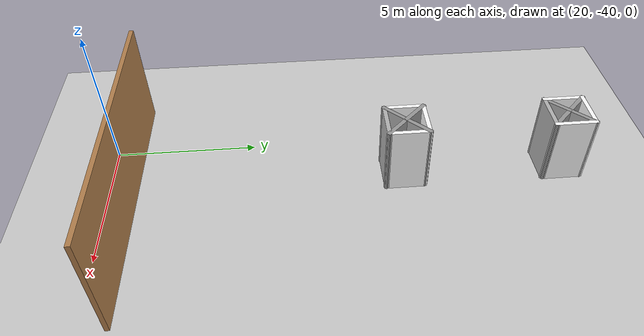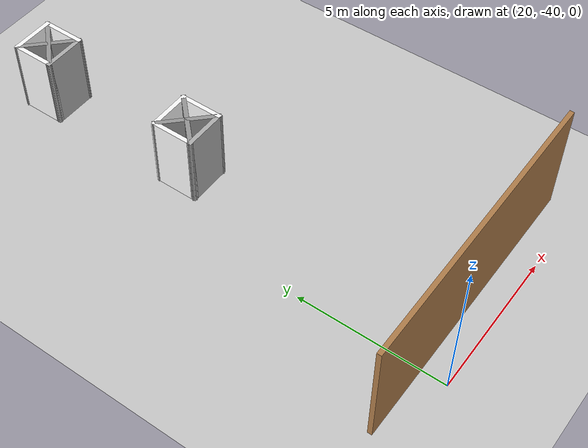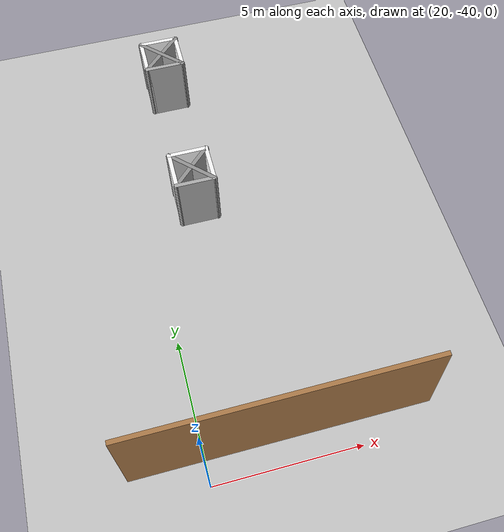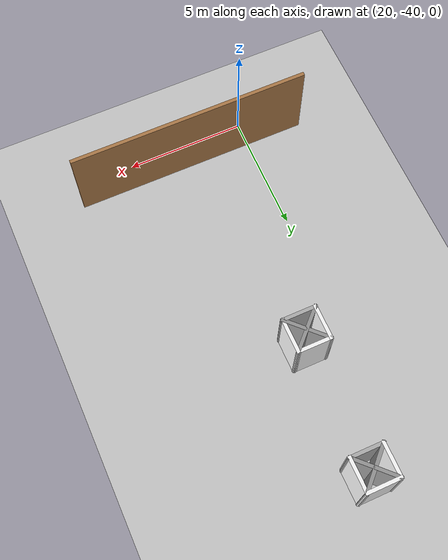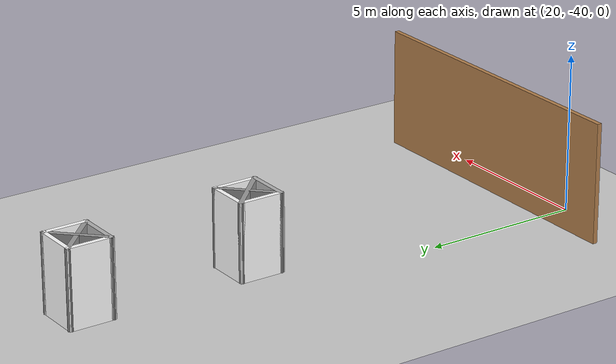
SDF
<sdf version="1.7">
 <world name="default">
  <model name="ground_plane">
   <static>1</static>
   <link name="link">
    <collision name="collision">
     <geometry><plane><normal>0 0 1</normal><size>100 100</size></plane></geometry>
     <surface>
      <contact><collide_bitmask>65535</collide_bitmask></contact>
      <friction><ode><mu>100</mu><mu2>50</mu2></ode></friction>
     </surface>
    </collision>
    <visual name="visual">
     <cast_shadows>0</cast_shadows>
     <geometry><plane><normal>0 0 1</normal><size>100 100</size></plane></geometry>
     <material>
      <script><uri>file://media/materials/scripts/gazebo.material</uri><name>Gazebo/Grey</name></script>
     </material>
    </visual>
   </link>
  </model>
  <model name="Untitled_clone_clone_1_clone_1_clone_1_clone">
   <link name="Wall_0">
    <pose>-0.8775 -4.2975 0 0 -0 0</pose>
    <inertial>
     <mass>1</mass>
     <inertia><ixx>1</ixx><ixy>0</ixy><ixz>0</ixz><iyy>1</iyy><iyz>0</iyz><izz>1</izz></inertia>
    </inertial>
    <visual name="Wall_0_Visual">
     <pose>0 0 1.9 0 -0 0</pose>
     <geometry><box><size>10 0.15 3.8</size></box></geometry>
     <material>
      <script><uri>file://media/materials/scripts/gazebo.material</uri><name>Gazebo/Wood</name></script>
      <ambient>1 1 1 1</ambient>
      <shader type="pixel"><normal_map>__default__</normal_map></shader>
      <diffuse>1 1 1 1</diffuse>
      <specular>0.2 0.2 0.2 1</specular>
      <emissive>0 0 0 1</emissive>
     </material>
     <meta><layer>0</layer></meta>
    </visual>
    <collision name="Wall_0_Collision">
     <pose>0 0 1.9 0 -0 0</pose>
     <geometry><box><size>10 0.15 3.8</size></box></geometry>
     <surface>
      <friction>
       <ode><mu>1</mu><mu2>1</mu2><fdir1>0 0 0</fdir1><slip1>0</slip1><slip2>0</slip2></ode>
       <torsional>
        <coefficient>1</coefficient>
        <patch_radius>0</patch_radius>
        <surface_radius>0</surface_radius>
        <use_patch_radius>1</use_patch_radius>
        <ode><slip>0</slip></ode>
       </torsional>
      </friction>
      <bounce><restitution_coefficient>0</restitution_coefficient><threshold>1e+06</threshold></bounce>
      <contact>
       <collide_without_contact>0</collide_without_contact>
       <collide_without_contact_bitmask>1</collide_without_contact_bitmask>
       <collide_bitmask>1</collide_bitmask>
       <ode>
        <soft_cfm>0</soft_cfm>
        <soft_erp>0.2</soft_erp>
        <kp>1e+13</kp>
        <kd>1</kd>
        <max_vel>0.01</max_vel>
        <min_depth>0</min_depth>
       </ode>
       <bullet>
        <split_impulse>1</split_impulse>
        <split_impulse_penetration_threshold>-0.01</split_impulse_penetration_threshold>
        <soft_cfm>0</soft_cfm>
        <soft_erp>0.2</soft_erp>
        <kp>1e+13</kp>
        <kd>1</kd>
       </bullet>
      </contact>
     </surface>
    </collision>
   </link>
   <static>1</static>
   <pose>23.4216 -34.7928 0 0 -0 0</pose>
  </model>
  <model name="Untitled_1_clone_3_clone_clone">
   <link name="Wall_10">
    <pose>4.92197 -3.43197 0 0 -0 1.5708</pose>
    <inertial>
     <mass>1</mass>
     <inertia><ixx>1</ixx><ixy>0</ixy><ixz>0</ixz><iyy>1</iyy><iyz>0</iyz><izz>1</izz></inertia>
    </inertial>
    <visual name="Wall_10_Visual">
     <pose>0 0 1.25 0 -0 0</pose>
     <geometry><box><size>1.5 0.15 2.5</size></box></geometry>
     <material>
      <script><uri>file://media/materials/scripts/gazebo.material</uri><name>Gazebo/CoM</name></script>
      <ambient>1 1 1 1</ambient>
      <shader type="pixel"><normal_map>__default__</normal_map></shader>
      <diffuse>1 1 1 1</diffuse>
      <specular>0 0 0 1</specular>
      <emissive>0 0 0 1</emissive>
     </material>
     <meta><layer>0</layer></meta>
    </visual>
    <collision name="Wall_10_Collision">
     <pose>0 0 1.25 0 -0 0</pose>
     <geometry><box><size>1.5 0.15 2.5</size></box></geometry>
     <surface>
      <friction>
       <ode><mu>1</mu><mu2>1</mu2><fdir1>0 0 0</fdir1><slip1>0</slip1><slip2>0</slip2></ode>
       <torsional>
        <coefficient>1</coefficient>
        <patch_radius>0</patch_radius>
        <surface_radius>0</surface_radius>
        <use_patch_radius>1</use_patch_radius>
        <ode><slip>0</slip></ode>
       </torsional>
      </friction>
      <bounce><restitution_coefficient>0</restitution_coefficient><threshold>1e+06</threshold></bounce>
      <contact>
       <collide_without_contact>0</collide_without_contact>
       <collide_without_contact_bitmask>1</collide_without_contact_bitmask>
       <collide_bitmask>1</collide_bitmask>
       <ode>
        <soft_cfm>0</soft_cfm>
        <soft_erp>0.2</soft_erp>
        <kp>1e+13</kp>
        <kd>1</kd>
        <max_vel>0.01</max_vel>
        <min_depth>0</min_depth>
       </ode>
       <bullet>
        <split_impulse>1</split_impulse>
        <split_impulse_penetration_threshold>-0.01</split_impulse_penetration_threshold>
        <soft_cfm>0</soft_cfm>
        <soft_erp>0.2</soft_erp>
        <kp>1e+13</kp>
        <kd>1</kd>
       </bullet>
      </contact>
     </surface>
    </collision>
   </link>
   <link name="Wall_11">
    <pose>5.59697 -3.43197 0 0 0 -0.785398</pose>
    <visual name="Wall_11_Visual">
     <pose>0 0 1.25 0 -0 0</pose>
     <geometry><box><size>2.05919 0.15 2.5</size></box></geometry>
     <material>
      <script><uri>file://media/materials/scripts/gazebo.material</uri><name>Gazebo/Grey</name></script>
      <ambient>1 1 1 1</ambient>
      <shader type="pixel"/>
     </material>
     <meta><layer>0</layer></meta>
    </visual>
    <collision name="Wall_11_Collision">
     <pose>0 0 1.25 0 -0 0</pose>
     <geometry><box><size>2.05919 0.15 2.5</size></box></geometry>
     <surface>
      <friction>
       <ode><mu>1</mu><mu2>1</mu2><fdir1>0 0 0</fdir1><slip1>0</slip1><slip2>0</slip2></ode>
       <torsional>
        <coefficient>1</coefficient>
        <patch_radius>0</patch_radius>
        <surface_radius>0</surface_radius>
        <use_patch_radius>1</use_patch_radius>
        <ode><slip>0</slip></ode>
       </torsional>
      </friction>
      <bounce><restitution_coefficient>0</restitution_coefficient><threshold>1e+06</threshold></bounce>
      <contact>
       <collide_without_contact>0</collide_without_contact>
       <collide_without_contact_bitmask>1</collide_without_contact_bitmask>
       <collide_bitmask>1</collide_bitmask>
       <ode>
        <soft_cfm>0</soft_cfm>
        <soft_erp>0.2</soft_erp>
        <kp>1e+13</kp>
        <kd>1</kd>
        <max_vel>0.01</max_vel>
        <min_depth>0</min_depth>
       </ode>
       <bullet>
        <split_impulse>1</split_impulse>
        <split_impulse_penetration_threshold>-0.01</split_impulse_penetration_threshold>
        <soft_cfm>0</soft_cfm>
        <soft_erp>0.2</soft_erp>
        <kp>1e+13</kp>
        <kd>1</kd>
       </bullet>
      </contact>
     </surface>
    </collision>
   </link>
   <link name="Wall_13">
    <pose>5.59697 -3.43197 0 0 -0 0.785398</pose>
    <visual name="Wall_13_Visual">
     <pose>0 0 1.25 0 -0 0</pose>
     <geometry><box><size>2.05919 0.15 2.5</size></box></geometry>
     <material>
      <script><uri>file://media/materials/scripts/gazebo.material</uri><name>Gazebo/Grey</name></script>
      <ambient>1 1 1 1</ambient>
      <shader type="pixel"/>
     </material>
     <meta><layer>0</layer></meta>
    </visual>
    <collision name="Wall_13_Collision">
     <pose>0 0 1.25 0 -0 0</pose>
     <geometry><box><size>2.05919 0.15 2.5</size></box></geometry>
     <surface>
      <friction>
       <ode><mu>1</mu><mu2>1</mu2><fdir1>0 0 0</fdir1><slip1>0</slip1><slip2>0</slip2></ode>
       <torsional>
        <coefficient>1</coefficient>
        <patch_radius>0</patch_radius>
        <surface_radius>0</surface_radius>
        <use_patch_radius>1</use_patch_radius>
        <ode><slip>0</slip></ode>
       </torsional>
      </friction>
      <bounce><restitution_coefficient>0</restitution_coefficient><threshold>1e+06</threshold></bounce>
      <contact>
       <collide_without_contact>0</collide_without_contact>
       <collide_without_contact_bitmask>1</collide_without_contact_bitmask>
       <collide_bitmask>1</collide_bitmask>
       <ode>
        <soft_cfm>0</soft_cfm>
        <soft_erp>0.2</soft_erp>
        <kp>1e+13</kp>
        <kd>1</kd>
        <max_vel>0.01</max_vel>
        <min_depth>0</min_depth>
       </ode>
       <bullet>
        <split_impulse>1</split_impulse>
        <split_impulse_penetration_threshold>-0.01</split_impulse_penetration_threshold>
        <soft_cfm>0</soft_cfm>
        <soft_erp>0.2</soft_erp>
        <kp>1e+13</kp>
        <kd>1</kd>
       </bullet>
      </contact>
     </surface>
    </collision>
   </link>
   <link name="Wall_7">
    <pose>5.59697 -2.75697 0 0 -0 0</pose>
    <inertial>
     <mass>1</mass>
     <inertia><ixx>1</ixx><ixy>0</ixy><ixz>0</ixz><iyy>1</iyy><iyz>0</iyz><izz>1</izz></inertia>
    </inertial>
    <visual name="Wall_7_Visual">
     <pose>0 0 1.25 0 -0 0</pose>
     <geometry><box><size>1.5 0.15 2.5</size></box></geometry>
     <material>
      <script><uri>file://media/materials/scripts/gazebo.material</uri><name>Gazebo/CoM</name></script>
      <ambient>1 1 1 1</ambient>
      <shader type="pixel"><normal_map>__default__</normal_map></shader>
      <diffuse>1 1 1 1</diffuse>
      <specular>0 0 0 1</specular>
      <emissive>0 0 0 1</emissive>
     </material>
     <meta><layer>0</layer></meta>
    </visual>
    <collision name="Wall_7_Collision">
     <pose>0 0 1.25 0 -0 0</pose>
     <geometry><box><size>1.5 0.15 2.5</size></box></geometry>
     <surface>
      <friction>
       <ode><mu>1</mu><mu2>1</mu2><fdir1>0 0 0</fdir1><slip1>0</slip1><slip2>0</slip2></ode>
       <torsional>
        <coefficient>1</coefficient>
        <patch_radius>0</patch_radius>
        <surface_radius>0</surface_radius>
        <use_patch_radius>1</use_patch_radius>
        <ode><slip>0</slip></ode>
       </torsional>
      </friction>
      <bounce><restitution_coefficient>0</restitution_coefficient><threshold>1e+06</threshold></bounce>
      <contact>
       <collide_without_contact>0</collide_without_contact>
       <collide_without_contact_bitmask>1</collide_without_contact_bitmask>
       <collide_bitmask>1</collide_bitmask>
       <ode>
        <soft_cfm>0</soft_cfm>
        <soft_erp>0.2</soft_erp>
        <kp>1e+13</kp>
        <kd>1</kd>
        <max_vel>0.01</max_vel>
        <min_depth>0</min_depth>
       </ode>
       <bullet>
        <split_impulse>1</split_impulse>
        <split_impulse_penetration_threshold>-0.01</split_impulse_penetration_threshold>
        <soft_cfm>0</soft_cfm>
        <soft_erp>0.2</soft_erp>
        <kp>1e+13</kp>
        <kd>1</kd>
       </bullet>
      </contact>
     </surface>
    </collision>
   </link>
   <link name="Wall_8">
    <pose>6.27197 -3.43197 0 0 0 -1.5708</pose>
    <inertial>
     <mass>1</mass>
     <inertia><ixx>1</ixx><ixy>0</ixy><ixz>0</ixz><iyy>1</iyy><iyz>0</iyz><izz>1</izz></inertia>
    </inertial>
    <visual name="Wall_8_Visual">
     <pose>0 0 1.25 0 -0 0</pose>
     <geometry><box><size>1.5 0.15 2.5</size></box></geometry>
     <material>
      <script><uri>file://media/materials/scripts/gazebo.material</uri><name>Gazebo/CoM</name></script>
      <ambient>1 1 1 1</ambient>
      <shader type="pixel"><normal_map>__default__</normal_map></shader>
      <diffuse>1 1 1 1</diffuse>
      <specular>0 0 0 1</specular>
      <emissive>0 0 0 1</emissive>
     </material>
     <meta><layer>0</layer></meta>
    </visual>
    <collision name="Wall_8_Collision">
     <pose>0 0 1.25 0 -0 0</pose>
     <geometry><box><size>1.5 0.15 2.5</size></box></geometry>
     <surface>
      <friction>
       <ode><mu>1</mu><mu2>1</mu2><fdir1>0 0 0</fdir1><slip1>0</slip1><slip2>0</slip2></ode>
       <torsional>
        <coefficient>1</coefficient>
        <patch_radius>0</patch_radius>
        <surface_radius>0</surface_radius>
        <use_patch_radius>1</use_patch_radius>
        <ode><slip>0</slip></ode>
       </torsional>
      </friction>
      <bounce><restitution_coefficient>0</restitution_coefficient><threshold>1e+06</threshold></bounce>
      <contact>
       <collide_without_contact>0</collide_without_contact>
       <collide_without_contact_bitmask>1</collide_without_contact_bitmask>
       <collide_bitmask>1</collide_bitmask>
       <ode>
        <soft_cfm>0</soft_cfm>
        <soft_erp>0.2</soft_erp>
        <kp>1e+13</kp>
        <kd>1</kd>
        <max_vel>0.01</max_vel>
        <min_depth>0</min_depth>
       </ode>
       <bullet>
        <split_impulse>1</split_impulse>
        <split_impulse_penetration_threshold>-0.01</split_impulse_penetration_threshold>
        <soft_cfm>0</soft_cfm>
        <soft_erp>0.2</soft_erp>
        <kp>1e+13</kp>
        <kd>1</kd>
       </bullet>
      </contact>
     </surface>
    </collision>
   </link>
   <link name="Wall_9">
    <pose>5.59697 -4.10697 0 0 -0 3.14159</pose>
    <inertial>
     <mass>1</mass>
     <inertia><ixx>1</ixx><ixy>0</ixy><ixz>0</ixz><iyy>1</iyy><iyz>0</iyz><izz>1</izz></inertia>
    </inertial>
    <visual name="Wall_9_Visual">
     <pose>0 0 1.25 0 -0 0</pose>
     <geometry><box><size>1.5 0.15 2.5</size></box></geometry>
     <material>
      <script><uri>file://media/materials/scripts/gazebo.material</uri><name>Gazebo/CoM</name></script>
      <ambient>1 1 1 1</ambient>
      <shader type="pixel"><normal_map>__default__</normal_map></shader>
      <diffuse>0.7 0.7 0.7 1</diffuse>
      <specular>0.01 0.01 0.01 1</specular>
      <emissive>0 0 0 1</emissive>
     </material>
     <meta><layer>0</layer></meta>
    </visual>
    <collision name="Wall_9_Collision">
     <pose>0 0 1.25 0 -0 0</pose>
     <geometry><box><size>1.5 0.15 2.5</size></box></geometry>
     <surface>
      <friction>
       <ode><mu>1</mu><mu2>1</mu2><fdir1>0 0 0</fdir1><slip1>0</slip1><slip2>0</slip2></ode>
       <torsional>
        <coefficient>1</coefficient>
        <patch_radius>0</patch_radius>
        <surface_radius>0</surface_radius>
        <use_patch_radius>1</use_patch_radius>
        <ode><slip>0</slip></ode>
       </torsional>
      </friction>
      <bounce><restitution_coefficient>0</restitution_coefficient><threshold>1e+06</threshold></bounce>
      <contact>
       <collide_without_contact>0</collide_without_contact>
       <collide_without_contact_bitmask>1</collide_without_contact_bitmask>
       <collide_bitmask>1</collide_bitmask>
       <ode>
        <soft_cfm>0</soft_cfm>
        <soft_erp>0.2</soft_erp>
        <kp>1e+13</kp>
        <kd>1</kd>
        <max_vel>0.01</max_vel>
        <min_depth>0</min_depth>
       </ode>
       <bullet>
        <split_impulse>1</split_impulse>
        <split_impulse_penetration_threshold>-0.01</split_impulse_penetration_threshold>
        <soft_cfm>0</soft_cfm>
        <soft_erp>0.2</soft_erp>
        <kp>1e+13</kp>
        <kd>1</kd>
       </bullet>
      </contact>
     </surface>
    </collision>
   </link>
   <static>1</static>
   <pose>16.244 -26.2143 0 0 -0 0</pose>
  </model>
  <model name="Untitled_1_clone_3_clone_clone_1">
   <link name="Wall_10">
    <pose>4.92197 -3.43197 0 0 -0 1.5708</pose>
    <inertial>
     <mass>1</mass>
     <inertia><ixx>1</ixx><ixy>0</ixy><ixz>0</ixz><iyy>1</iyy><iyz>0</iyz><izz>1</izz></inertia>
    </inertial>
    <visual name="Wall_10_Visual">
     <pose>0 0 1.25 0 -0 0</pose>
     <geometry><box><size>1.5 0.15 2.5</size></box></geometry>
     <material>
      <script><uri>file://media/materials/scripts/gazebo.material</uri><name>Gazebo/CoM</name></script>
      <ambient>1 1 1 1</ambient>
      <shader type="pixel"><normal_map>__default__</normal_map></shader>
      <diffuse>1 1 1 1</diffuse>
      <specular>0 0 0 1</specular>
      <emissive>0 0 0 1</emissive>
     </material>
     <meta><layer>0</layer></meta>
    </visual>
    <collision name="Wall_10_Collision">
     <pose>0 0 1.25 0 -0 0</pose>
     <geometry><box><size>1.5 0.15 2.5</size></box></geometry>
     <surface>
      <friction>
       <ode><mu>1</mu><mu2>1</mu2><fdir1>0 0 0</fdir1><slip1>0</slip1><slip2>0</slip2></ode>
       <torsional>
        <coefficient>1</coefficient>
        <patch_radius>0</patch_radius>
        <surface_radius>0</surface_radius>
        <use_patch_radius>1</use_patch_radius>
        <ode><slip>0</slip></ode>
       </torsional>
      </friction>
      <bounce><restitution_coefficient>0</restitution_coefficient><threshold>1e+06</threshold></bounce>
      <contact>
       <collide_without_contact>0</collide_without_contact>
       <collide_without_contact_bitmask>1</collide_without_contact_bitmask>
       <collide_bitmask>1</collide_bitmask>
       <ode>
        <soft_cfm>0</soft_cfm>
        <soft_erp>0.2</soft_erp>
        <kp>1e+13</kp>
        <kd>1</kd>
        <max_vel>0.01</max_vel>
        <min_depth>0</min_depth>
       </ode>
       <bullet>
        <split_impulse>1</split_impulse>
        <split_impulse_penetration_threshold>-0.01</split_impulse_penetration_threshold>
        <soft_cfm>0</soft_cfm>
        <soft_erp>0.2</soft_erp>
        <kp>1e+13</kp>
        <kd>1</kd>
       </bullet>
      </contact>
     </surface>
    </collision>
   </link>
   <link name="Wall_11">
    <pose>5.59697 -3.43197 0 0 0 -0.785398</pose>
    <visual name="Wall_11_Visual">
     <pose>0 0 1.25 0 -0 0</pose>
     <geometry><box><size>2.05919 0.15 2.5</size></box></geometry>
     <material>
      <script><uri>file://media/materials/scripts/gazebo.material</uri><name>Gazebo/Grey</name></script>
      <ambient>1 1 1 1</ambient>
      <shader type="pixel"/>
     </material>
     <meta><layer>0</layer></meta>
    </visual>
    <collision name="Wall_11_Collision">
     <pose>0 0 1.25 0 -0 0</pose>
     <geometry><box><size>2.05919 0.15 2.5</size></box></geometry>
     <surface>
      <friction>
       <ode><mu>1</mu><mu2>1</mu2><fdir1>0 0 0</fdir1><slip1>0</slip1><slip2>0</slip2></ode>
       <torsional>
        <coefficient>1</coefficient>
        <patch_radius>0</patch_radius>
        <surface_radius>0</surface_radius>
        <use_patch_radius>1</use_patch_radius>
        <ode><slip>0</slip></ode>
       </torsional>
      </friction>
      <bounce><restitution_coefficient>0</restitution_coefficient><threshold>1e+06</threshold></bounce>
      <contact>
       <collide_without_contact>0</collide_without_contact>
       <collide_without_contact_bitmask>1</collide_without_contact_bitmask>
       <collide_bitmask>1</collide_bitmask>
       <ode>
        <soft_cfm>0</soft_cfm>
        <soft_erp>0.2</soft_erp>
        <kp>1e+13</kp>
        <kd>1</kd>
        <max_vel>0.01</max_vel>
        <min_depth>0</min_depth>
       </ode>
       <bullet>
        <split_impulse>1</split_impulse>
        <split_impulse_penetration_threshold>-0.01</split_impulse_penetration_threshold>
        <soft_cfm>0</soft_cfm>
        <soft_erp>0.2</soft_erp>
        <kp>1e+13</kp>
        <kd>1</kd>
       </bullet>
      </contact>
     </surface>
    </collision>
   </link>
   <link name="Wall_13">
    <pose>5.59697 -3.43197 0 0 -0 0.785398</pose>
    <visual name="Wall_13_Visual">
     <pose>0 0 1.25 0 -0 0</pose>
     <geometry><box><size>2.05919 0.15 2.5</size></box></geometry>
     <material>
      <script><uri>file://media/materials/scripts/gazebo.material</uri><name>Gazebo/Grey</name></script>
      <ambient>1 1 1 1</ambient>
      <shader type="pixel"/>
     </material>
     <meta><layer>0</layer></meta>
    </visual>
    <collision name="Wall_13_Collision">
     <pose>0 0 1.25 0 -0 0</pose>
     <geometry><box><size>2.05919 0.15 2.5</size></box></geometry>
     <surface>
      <friction>
       <ode><mu>1</mu><mu2>1</mu2><fdir1>0 0 0</fdir1><slip1>0</slip1><slip2>0</slip2></ode>
       <torsional>
        <coefficient>1</coefficient>
        <patch_radius>0</patch_radius>
        <surface_radius>0</surface_radius>
        <use_patch_radius>1</use_patch_radius>
        <ode><slip>0</slip></ode>
       </torsional>
      </friction>
      <bounce><restitution_coefficient>0</restitution_coefficient><threshold>1e+06</threshold></bounce>
      <contact>
       <collide_without_contact>0</collide_without_contact>
       <collide_without_contact_bitmask>1</collide_without_contact_bitmask>
       <collide_bitmask>1</collide_bitmask>
       <ode>
        <soft_cfm>0</soft_cfm>
        <soft_erp>0.2</soft_erp>
        <kp>1e+13</kp>
        <kd>1</kd>
        <max_vel>0.01</max_vel>
        <min_depth>0</min_depth>
       </ode>
       <bullet>
        <split_impulse>1</split_impulse>
        <split_impulse_penetration_threshold>-0.01</split_impulse_penetration_threshold>
        <soft_cfm>0</soft_cfm>
        <soft_erp>0.2</soft_erp>
        <kp>1e+13</kp>
        <kd>1</kd>
       </bullet>
      </contact>
     </surface>
    </collision>
   </link>
   <link name="Wall_7">
    <pose>5.59697 -2.75697 0 0 -0 0</pose>
    <inertial>
     <mass>1</mass>
     <inertia><ixx>1</ixx><ixy>0</ixy><ixz>0</ixz><iyy>1</iyy><iyz>0</iyz><izz>1</izz></inertia>
    </inertial>
    <visual name="Wall_7_Visual">
     <pose>0 0 1.25 0 -0 0</pose>
     <geometry><box><size>1.5 0.15 2.5</size></box></geometry>
     <material>
      <script><uri>file://media/materials/scripts/gazebo.material</uri><name>Gazebo/CoM</name></script>
      <ambient>1 1 1 1</ambient>
      <shader type="pixel"><normal_map>__default__</normal_map></shader>
      <diffuse>1 1 1 1</diffuse>
      <specular>0 0 0 1</specular>
      <emissive>0 0 0 1</emissive>
     </material>
     <meta><layer>0</layer></meta>
    </visual>
    <collision name="Wall_7_Collision">
     <pose>0 0 1.25 0 -0 0</pose>
     <geometry><box><size>1.5 0.15 2.5</size></box></geometry>
     <surface>
      <friction>
       <ode><mu>1</mu><mu2>1</mu2><fdir1>0 0 0</fdir1><slip1>0</slip1><slip2>0</slip2></ode>
       <torsional>
        <coefficient>1</coefficient>
        <patch_radius>0</patch_radius>
        <surface_radius>0</surface_radius>
        <use_patch_radius>1</use_patch_radius>
        <ode><slip>0</slip></ode>
       </torsional>
      </friction>
      <bounce><restitution_coefficient>0</restitution_coefficient><threshold>1e+06</threshold></bounce>
      <contact>
       <collide_without_contact>0</collide_without_contact>
       <collide_without_contact_bitmask>1</collide_without_contact_bitmask>
       <collide_bitmask>1</collide_bitmask>
       <ode>
        <soft_cfm>0</soft_cfm>
        <soft_erp>0.2</soft_erp>
        <kp>1e+13</kp>
        <kd>1</kd>
        <max_vel>0.01</max_vel>
        <min_depth>0</min_depth>
       </ode>
       <bullet>
        <split_impulse>1</split_impulse>
        <split_impulse_penetration_threshold>-0.01</split_impulse_penetration_threshold>
        <soft_cfm>0</soft_cfm>
        <soft_erp>0.2</soft_erp>
        <kp>1e+13</kp>
        <kd>1</kd>
       </bullet>
      </contact>
     </surface>
    </collision>
   </link>
   <link name="Wall_8">
    <pose>6.27197 -3.43197 0 0 0 -1.5708</pose>
    <inertial>
     <mass>1</mass>
     <inertia><ixx>1</ixx><ixy>0</ixy><ixz>0</ixz><iyy>1</iyy><iyz>0</iyz><izz>1</izz></inertia>
    </inertial>
    <visual name="Wall_8_Visual">
     <pose>0 0 1.25 0 -0 0</pose>
     <geometry><box><size>1.5 0.15 2.5</size></box></geometry>
     <material>
      <script><uri>file://media/materials/scripts/gazebo.material</uri><name>Gazebo/CoM</name></script>
      <ambient>1 1 1 1</ambient>
      <shader type="pixel"><normal_map>__default__</normal_map></shader>
      <diffuse>1 1 1 1</diffuse>
      <specular>0 0 0 1</specular>
      <emissive>0 0 0 1</emissive>
     </material>
     <meta><layer>0</layer></meta>
    </visual>
    <collision name="Wall_8_Collision">
     <pose>0 0 1.25 0 -0 0</pose>
     <geometry><box><size>1.5 0.15 2.5</size></box></geometry>
     <surface>
      <friction>
       <ode><mu>1</mu><mu2>1</mu2><fdir1>0 0 0</fdir1><slip1>0</slip1><slip2>0</slip2></ode>
       <torsional>
        <coefficient>1</coefficient>
        <patch_radius>0</patch_radius>
        <surface_radius>0</surface_radius>
        <use_patch_radius>1</use_patch_radius>
        <ode><slip>0</slip></ode>
       </torsional>
      </friction>
      <bounce><restitution_coefficient>0</restitution_coefficient><threshold>1e+06</threshold></bounce>
      <contact>
       <collide_without_contact>0</collide_without_contact>
       <collide_without_contact_bitmask>1</collide_without_contact_bitmask>
       <collide_bitmask>1</collide_bitmask>
       <ode>
        <soft_cfm>0</soft_cfm>
        <soft_erp>0.2</soft_erp>
        <kp>1e+13</kp>
        <kd>1</kd>
        <max_vel>0.01</max_vel>
        <min_depth>0</min_depth>
       </ode>
       <bullet>
        <split_impulse>1</split_impulse>
        <split_impulse_penetration_threshold>-0.01</split_impulse_penetration_threshold>
        <soft_cfm>0</soft_cfm>
        <soft_erp>0.2</soft_erp>
        <kp>1e+13</kp>
        <kd>1</kd>
       </bullet>
      </contact>
     </surface>
    </collision>
   </link>
   <link name="Wall_9">
    <pose>5.59697 -4.10697 0 0 -0 3.14159</pose>
    <inertial>
     <mass>1</mass>
     <inertia><ixx>1</ixx><ixy>0</ixy><ixz>0</ixz><iyy>1</iyy><iyz>0</iyz><izz>1</izz></inertia>
    </inertial>
    <visual name="Wall_9_Visual">
     <pose>0 0 1.25 0 -0 0</pose>
     <geometry><box><size>1.5 0.15 2.5</size></box></geometry>
     <material>
      <script><uri>file://media/materials/scripts/gazebo.material</uri><name>Gazebo/CoM</name></script>
      <ambient>1 1 1 1</ambient>
      <shader type="pixel"><normal_map>__default__</normal_map></shader>
      <diffuse>0.7 0.7 0.7 1</diffuse>
      <specular>0.01 0.01 0.01 1</specular>
      <emissive>0 0 0 1</emissive>
     </material>
     <meta><layer>0</layer></meta>
    </visual>
    <collision name="Wall_9_Collision">
     <pose>0 0 1.25 0 -0 0</pose>
     <geometry><box><size>1.5 0.15 2.5</size></box></geometry>
     <surface>
      <friction>
       <ode><mu>1</mu><mu2>1</mu2><fdir1>0 0 0</fdir1><slip1>0</slip1><slip2>0</slip2></ode>
       <torsional>
        <coefficient>1</coefficient>
        <patch_radius>0</patch_radius>
        <surface_radius>0</surface_radius>
        <use_patch_radius>1</use_patch_radius>
        <ode><slip>0</slip></ode>
       </torsional>
      </friction>
      <bounce><restitution_coefficient>0</restitution_coefficient><threshold>1e+06</threshold></bounce>
      <contact>
       <collide_without_contact>0</collide_without_contact>
       <collide_without_contact_bitmask>1</collide_without_contact_bitmask>
       <collide_bitmask>1</collide_bitmask>
       <ode>
        <soft_cfm>0</soft_cfm>
        <soft_erp>0.2</soft_erp>
        <kp>1e+13</kp>
        <kd>1</kd>
        <max_vel>0.01</max_vel>
        <min_depth>0</min_depth>
       </ode>
       <bullet>
        <split_impulse>1</split_impulse>
        <split_impulse_penetration_threshold>-0.01</split_impulse_penetration_threshold>
        <soft_cfm>0</soft_cfm>
        <soft_erp>0.2</soft_erp>
        <kp>1e+13</kp>
        <kd>1</kd>
       </bullet>
      </contact>
     </surface>
    </collision>
   </link>
   <static>1</static>
   <pose>16.2696 -20.5963 0 0 -0 0</pose>
  </model>
 </world>
</sdf>
